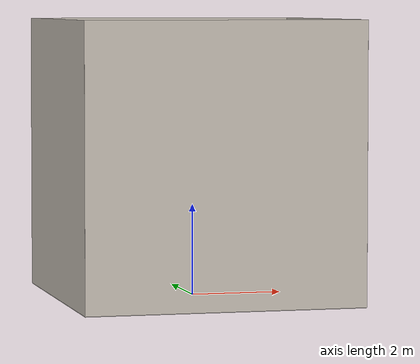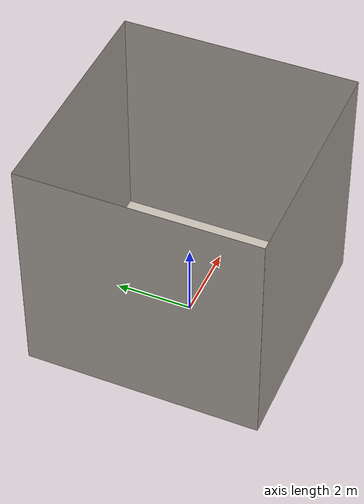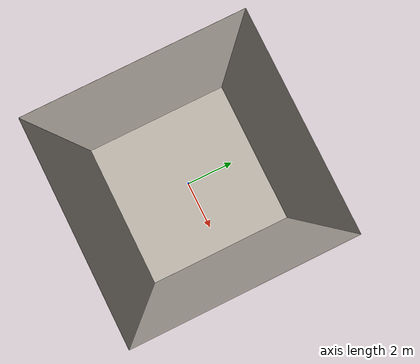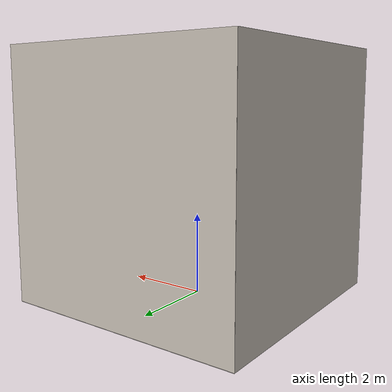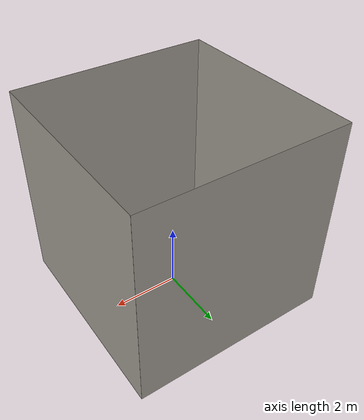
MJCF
<mujoco model="Laddermoon_Arena">
    <visual>
        <global offwidth="640" offheight="480" />
        <headlight ambient="0.4 0.4 0.4" diffuse="0.4 0.4 0.4" />
    </visual>
    <asset>
        <texture name="tex_floor" type="2d" file="textures/floor.png" />
        <material name="mat_floor" texture="tex_floor" texrepeat="1 1" texuniform="false" emission="1" shininess="0" specular="0" />
        <texture name="tex_ceiling" type="2d" file="textures/ceiling.png" />
        <material name="mat_ceiling" texture="tex_ceiling" texrepeat="1 1" texuniform="false" emission="1" shininess="0" specular="0" />
        <texture name="tex_wall" type="2d" file="textures/wall.png" />
        <material name="mat_wall" texture="tex_wall" texrepeat="1 1" texuniform="false" emission="1" shininess="0" specular="0" />
    </asset>
    <worldbody>
        <light name="西南角灯" pos="-3 -3 5" directional="false" />
        <light name="东南角灯" pos="3 -3 5" directional="false" />
        <light name="西北角灯" pos="-3 3 5" directional="false" />
        <light name="东北角灯" pos="3 3 5" directional="false" />
        <camera name="西南角摄像机" pos="-3 -3 4" xyaxes="0.7071 -0.7071 0.0000 0.3590 0.3590 0.8615" />
        <camera name="东南角摄像机" pos="3 -3 4" xyaxes="0.7071 0.7071 -0.0000 -0.3590 0.3590 0.8615" />
        <camera name="西北角摄像机" pos="-3 3 4" xyaxes="-0.7071 -0.7071 0.0000 0.3590 -0.3590 0.8615" />
        <camera name="东北角摄像机" pos="3 3 4" xyaxes="-0.7071 0.7071 0.0000 -0.3590 -0.3590 0.8615" />
        <camera name="南墙摄像机" pos="0 -3 3" xyaxes="1.0000 -0.0000 0.0000 0.0000 0.4472 0.8944" />
        <camera name="北墙摄像机" pos="0 3 3" xyaxes="-1.0000 -0.0000 0.0000 0.0000 -0.4472 0.8944" />
        <camera name="西墙摄像机" pos="-3 0 3" xyaxes="0.0000 -1.0000 0.0000 0.4472 0.0000 0.8944" />
        <camera name="东墙摄像机" pos="3 0 3" xyaxes="0.0000 1.0000 -0.0000 -0.4472 0.0000 0.8944" />
        <camera name="天花板摄像机" pos="0 0 6" xyaxes="1.0000 0.0000 0.0000 -0.0000 1.0000 0.0000" />
        <geom name="地面" type="plane" pos="0.0 0.0 0.0" size="3.05 3.05 0.1" xyaxes="1.0000 0.0000 0.0000 0.0000 1.0000 0.0000" material="mat_floor" />
        <geom name="天花板" type="plane" pos="0.0 0.0 6.1" size="3.05 3.05 0.1" xyaxes="-1.0000 0.0000 0.0000 0.0000 1.0000 0.0000" material="mat_ceiling" />
        <geom name="南墙" type="plane" pos="0.0 -3.05 3.05" size="3.05 3.05 0.1" xyaxes="-1.0000 -0.0000 0.0000 0.0000 0.0000 1.0000" material="mat_wall" />
        <geom name="北墙" type="plane" pos="0.0 3.05 3.05" size="3.05 3.05 0.1" xyaxes="1.0000 0.0000 -0.0000 0.0000 0.0000 1.0000" material="mat_wall" />
        <geom name="西墙" type="plane" pos="-3.05 0.0 3.05" size="3.05 3.05 0.1" xyaxes="0.0000 1.0000 0.0000 0.0000 0.0000 1.0000" material="mat_wall" />
        <geom name="东墙" type="plane" pos="3.05 0.0 3.05" size="3.05 3.05 0.1" xyaxes="-0.0000 -1.0000 -0.0000 0.0000 0.0000 1.0000" material="mat_wall" />
    </worldbody>
</mujoco>
